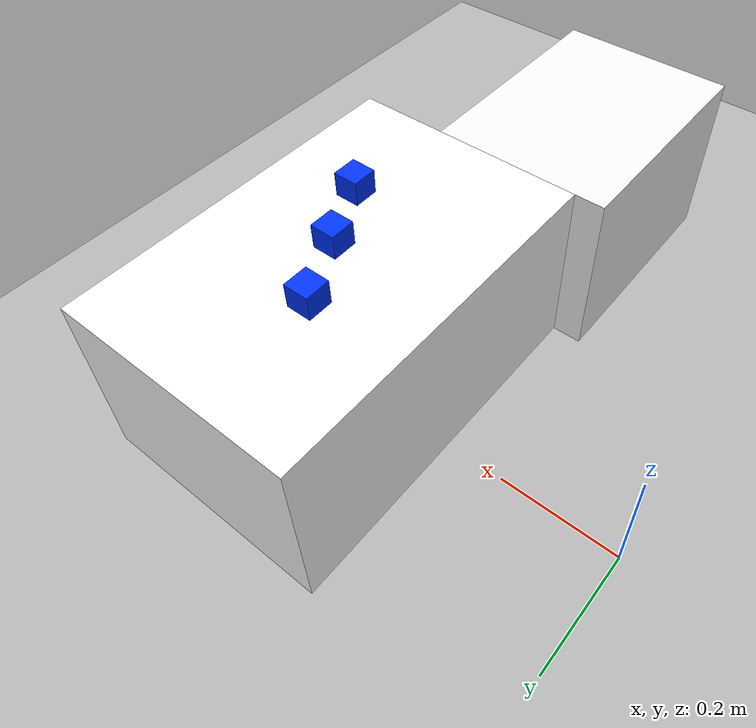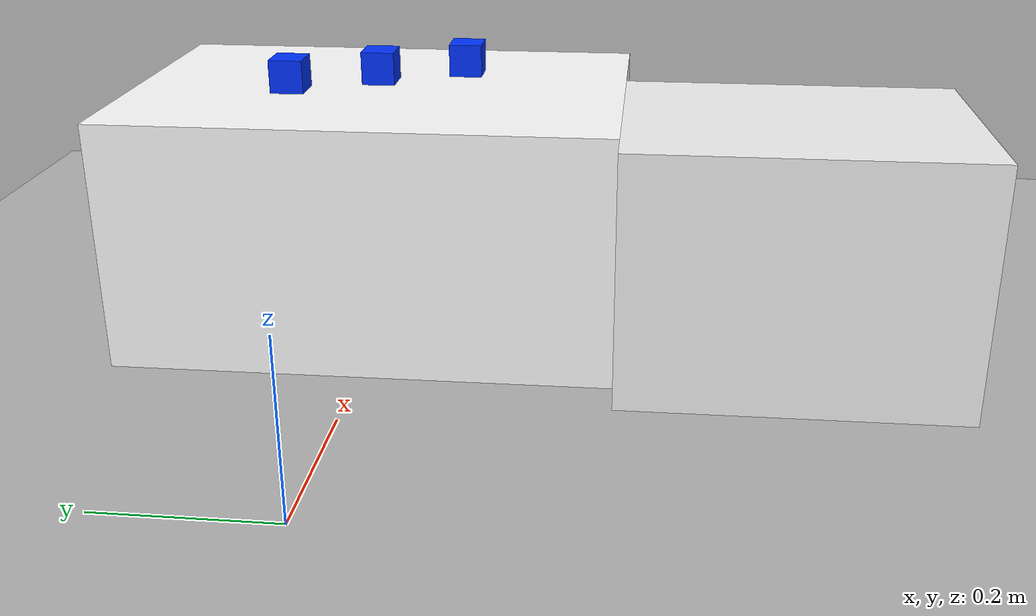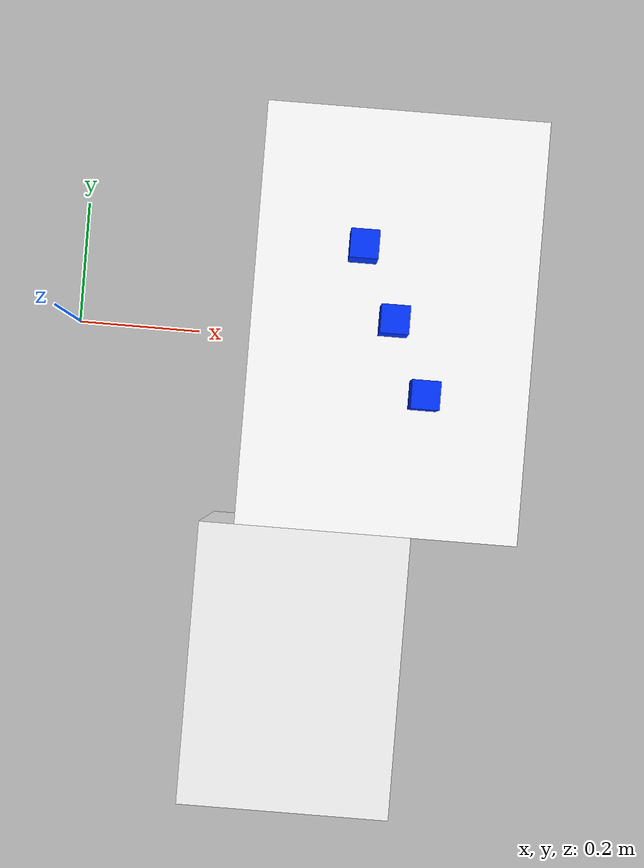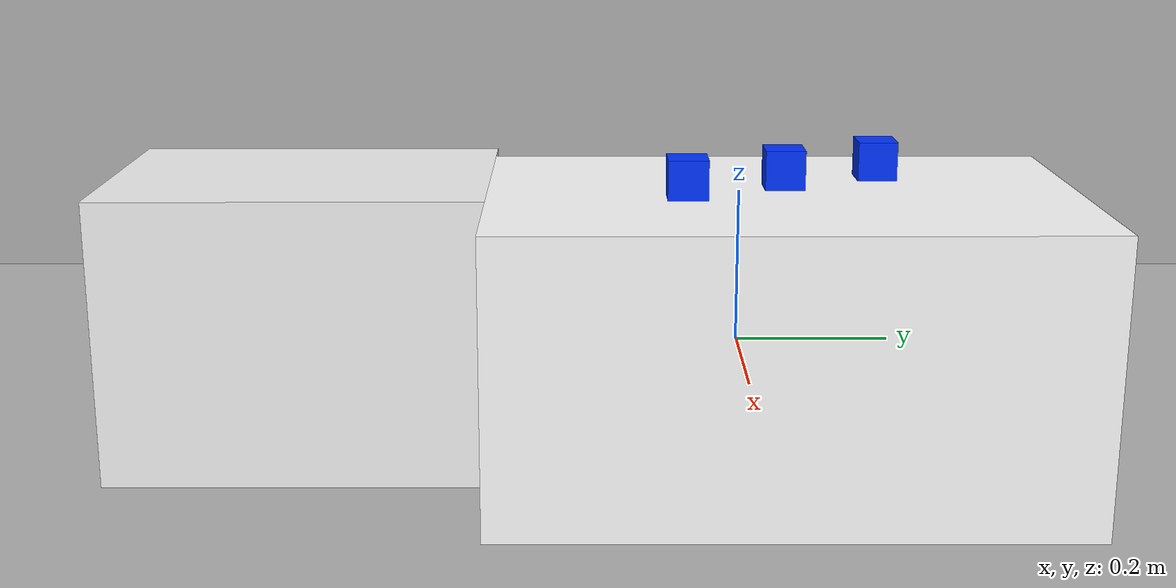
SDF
<?xml version="1.0" ?>
<!--
  Pick and Place World for ME5250 Bin Picking Project
  Abdul Rahman - Northeastern University
-->
<sdf version="1.8">
  <world name="pick_place_world">

    <!-- Physics -->
    <physics type="ode">
      <max_step_size>0.001</max_step_size>
      <real_time_factor>1.0</real_time_factor>
    </physics>

    <!-- Lighting -->
    <light type="directional" name="sun">
      <cast_shadows>true</cast_shadows>
      <pose>0 0 10 0 0 0</pose>
      <diffuse>0.8 0.8 0.8 1</diffuse>
      <specular>0.2 0.2 0.2 1</specular>
      <direction>-0.5 0.1 -0.9</direction>
    </light>

    <!-- Ground Plane -->
    <model name="ground_plane">
      <static>true</static>
      <link name="link">
        <collision name="collision">
          <geometry>
            <plane>
              <normal>0 0 1</normal>
              <size>10 10</size>
            </plane>
          </geometry>
        </collision>
        <visual name="visual">
          <geometry>
            <plane>
              <normal>0 0 1</normal>
              <size>10 10</size>
            </plane>
          </geometry>
          <material>
            <ambient>0.3 0.3 0.3 1</ambient>
            <diffuse>0.7 0.7 0.7 1</diffuse>
          </material>
        </visual>
      </link>
    </model>

    <!-- Pick Table (low, white, in front of robot) -->
    <model name="pick_table">
      <static>true</static>
      <pose>0.5 0 0.15 0 0 0</pose>
      <link name="link">
        <collision name="collision">
          <geometry>
            <box>
              <size>0.4 0.6 0.3</size>
            </box>
          </geometry>
        </collision>
        <visual name="visual">
          <geometry>
            <box>
              <size>0.4 0.6 0.3</size>
            </box>
          </geometry>
          <material>
            <ambient>0.9 0.9 0.9 1</ambient>
            <diffuse>1.0 1.0 1.0 1</diffuse>
          </material>
        </visual>
      </link>
    </model>

    <!-- Place Table (higher, white, on the right) -->
    <model name="place_table">
      <static>true</static>
      <pose>0.4 -0.50 0.15 0 0 0</pose>
      <link name="link">
        <collision name="collision">
          <geometry>
            <box>
              <size>0.3 0.4 0.3</size>
            </box>
          </geometry>
        </collision>
        <visual name="visual">
          <geometry>
            <box>
              <size>0.3 0.4 0.3</size>
            </box>
          </geometry>
          <material>
            <ambient>0.85 0.85 0.85 1</ambient>
            <diffuse>0.95 0.95 0.95 1</diffuse>
          </material>
        </visual>
      </link>
    </model>

    <!-- Blue Cube 1 -->
    <model name="blue_cube_1">
      <pose>0.45 0.1 0.325 0 0 0</pose>
      <link name="link">
        <inertial>
          <mass>0.1</mass>
          <inertia>
            <ixx>0.000017</ixx>
            <iyy>0.000017</iyy>
            <izz>0.000017</izz>
          </inertia>
        </inertial>
        <collision name="collision">
          <geometry>
            <box>
              <size>0.04 0.04 0.04</size>
            </box>
          </geometry>
          <surface>
            <friction>
              <ode>
                <mu>1.0</mu>
                <mu2>1.0</mu2>
              </ode>
            </friction>
          </surface>
        </collision>
        <visual name="visual">
          <geometry>
            <box>
              <size>0.04 0.04 0.04</size>
            </box>
          </geometry>
          <material>
            <ambient>0.0 0.0 0.8 1</ambient>
            <diffuse>0.0 0.2 1.0 1</diffuse>
          </material>
        </visual>
      </link>
    </model>

    <!-- Blue Cube 2 -->
    <model name="blue_cube_2">
      <pose>0.5 0 0.325 0 0 0</pose>
      <link name="link">
        <inertial>
          <mass>0.1</mass>
          <inertia>
            <ixx>0.000017</ixx>
            <iyy>0.000017</iyy>
            <izz>0.000017</izz>
          </inertia>
        </inertial>
        <collision name="collision">
          <geometry>
            <box>
              <size>0.04 0.04 0.04</size>
            </box>
          </geometry>
          <surface>
            <friction>
              <ode>
                <mu>1.0</mu>
                <mu2>1.0</mu2>
              </ode>
            </friction>
          </surface>
        </collision>
        <visual name="visual">
          <geometry>
            <box>
              <size>0.04 0.04 0.04</size>
            </box>
          </geometry>
          <material>
            <ambient>0.0 0.0 0.8 1</ambient>
            <diffuse>0.0 0.2 1.0 1</diffuse>
          </material>
        </visual>
      </link>
    </model>

    <!-- Blue Cube 3 -->
    <model name="blue_cube_3">
      <pose>0.55 -0.1 0.325 0 0 0</pose>
      <link name="link">
        <inertial>
          <mass>0.1</mass>
          <inertia>
            <ixx>0.000017</ixx>
            <iyy>0.000017</iyy>
            <izz>0.000017</izz>
          </inertia>
        </inertial>
        <collision name="collision">
          <geometry>
            <box>
              <size>0.04 0.04 0.04</size>
            </box>
          </geometry>
          <surface>
            <friction>
              <ode>
                <mu>1.0</mu>
                <mu2>1.0</mu2>
              </ode>
            </friction>
          </surface>
        </collision>
        <visual name="visual">
          <geometry>
            <box>
              <size>0.04 0.04 0.04</size>
            </box>
          </geometry>
          <material>
            <ambient>0.0 0.0 0.8 1</ambient>
            <diffuse>0.0 0.2 1.0 1</diffuse>
          </material>
        </visual>
      </link>
    </model>

  </world>
</sdf>
